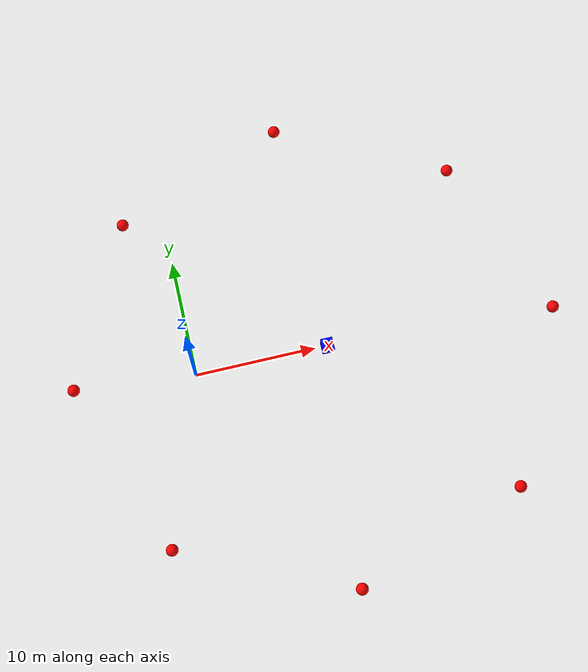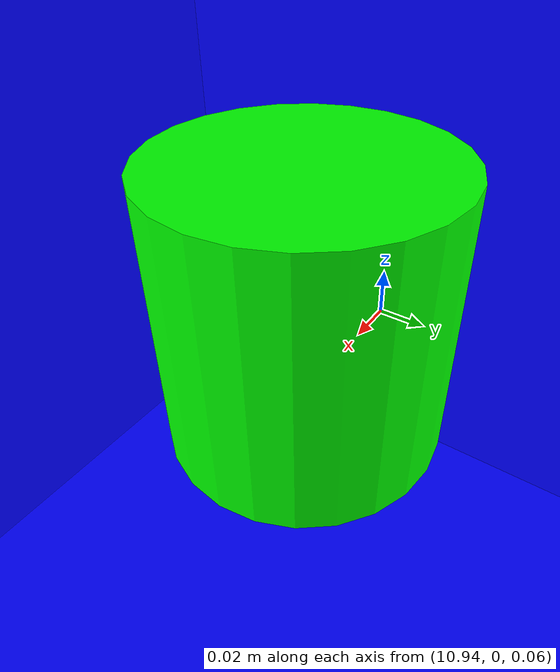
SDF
<sdf version="1.8">

    <world name="3d_world">

        <physics name="1ms" type="ode">
            <max_step_size>0.001</max_step_size>
            <real_time_factor>1.0</real_time_factor>
            <real_time_update_rate>1000.0</real_time_update_rate>
        </physics>
        <gravity>0 0 0</gravity>

        <plugin filename="gz-sim-physics-system" name="gz::sim::v8::systems::Physics">
        </plugin>
        <plugin filename="libignition-gazebo-user-commands-system.so" name="ignition::gazebo::systems::UserCommands">
        </plugin>
        <plugin filename="gz-sim-scene-broadcaster-system" name="gz::sim::systems::SceneBroadcaster">
        </plugin>
        <!-- Moved Sensors system plugin up with other plugins -->
        <plugin filename="gz-sim-sensors-system" name="gz::sim::systems::Sensors">
            <render_engine>ogre2</render_engine>
        </plugin>

        <light type="directional" name="sun">
            <cast_shadows>true</cast_shadows>
            <pose>0 0 10 0 0 0</pose>
            <diffuse>0.8 0.8 0.8 1</diffuse>
            <specular>0.2 0.2 0.2 1</specular>
            <attenuation>
                <range>1000</range>
                <constant>0.9</constant>
                <linear>0.01</linear>
                <quadratic>0.001</quadratic>
            </attenuation>
            <direction>-0.5 0.1 -0.9</direction>
        </light>

        <model name="agente" canonical_link="chassis">
            <pose relative_to="world">11.0 0 0.0 0 0 0</pose> <!-- Changed z-position to 0.0 -->
            <link name="chassis">
                <pose relative_to="__model__">0.0 0 0.0 0 0 0</pose>
                <inertial>
                    <mass>1.14395</mass>
                    <inertia>
                        <ixx>0.095329</ixx>
                        <ixy>0</ixy>
                        <ixz>0</ixz>
                        <iyy>0.381317</iyy>
                        <iyz>0</iyz>
                        <izz>0.476646</izz>
                    </inertia>
                </inertial>
                <visual name="visual">
                    <geometry>
                        <box>
                            <size>1.0 1.0 1.0</size> <!-- Changed height to 1.0 for cube chassis -->
                        </box>
                    </geometry>
                    <material>
                        <ambient>0.0 0.0 1.0 1</ambient>
                        <diffuse>0.0 0.0 1.0 1</diffuse>
                        <specular>0.0 0.0 1.0 1</specular>
                    </material>
                </visual>
                <collision name="collision">
                    <geometry>
                        <box>
                            <size>1.0 1.0 1.0</size>
                        </box>
                    </geometry>
                </collision>
                <enable_gravity>false</enable_gravity>
            </link>

            <!-- Added LiDAR link -->
            <link name='lidar_link'>
                <pose relative_to='chassis'>0.0 0 0.1 0 0 0</pose>
                <inertial>
                    <mass>0.1</mass>
                    <inertia>
                        <ixx>0.000166667</ixx>
                        <iyy>0.000166667</iyy>
                        <izz>0.000166667</izz>
                    </inertia>
                </inertial>
                <collision name='collision'>
                    <geometry>
                        <cylinder>
                            <radius>0.05</radius>
                            <length>0.1</length>
                        </cylinder>
                    </geometry>
                </collision>
                <visual name='visual'>
                    <geometry>
                        <cylinder>
                            <radius>0.05</radius>
                            <length>0.1</length>
                        </cylinder>
                    </geometry>
                    <material>
                        <ambient>0.0 1.0 0.0 1</ambient>
                        <diffuse>0.0 1.0 0.0 1</diffuse>
                        <specular>0.0 1.0 0.0 1</specular>
                    </material>
                </visual>
                <sensor name="lidar" type="gpu_lidar">
                    <topic>scan</topic>
                    <update_rate>10</update_rate>
                    <lidar>
                        <scan>
                            <horizontal>
                                <samples>5000</samples>
                                <resolution>1</resolution>
                                <min_angle>-3.14159</min_angle>
                                <max_angle>3.14159</max_angle>
                            </horizontal>
                        </scan>
                        <range>
                            <min>0.1</min>
                            <max>50.0</max>
                            <resolution>0.01</resolution>
                        </range>
                    </lidar>
                    <visualize>true</visualize>
                    <always_on>true</always_on>
                    <update_rate>10</update_rate>
                    <pose_frame>lidar</pose_frame>
                </sensor>
                <enable_gravity>false</enable_gravity>
            </link>

            <!-- Added joint to connect LiDAR to chassis -->
            <joint name="lidar_joint" type="fixed">
                <parent>chassis</parent>
                <child>lidar_link</child>
            </joint>

            <plugin filename="ignition-gazebo-joint-state-publisher-system" name="ignition::gazebo::systems::JointStatePublisher">
            </plugin>

            <plugin filename="ignition-gazebo-odometry-publisher-system" name="ignition::gazebo::systems::OdometryPublisher">
                <dimensions>3</dimensions>
            </plugin>

            <plugin filename="ignition-gazebo-velocity-control-system" name="ignition::gazebo::systems::VelocityControl">
                <initial_linear>0.0 0 0</initial_linear>
                <initial_angular>0 0 0.0</initial_angular>
            </plugin>

            <plugin filename="libignition-gazebo-pose-publisher-system.so" name="ignition::gazebo::systems::PosePublisher">
                <topic>/agente/pose</topic>
                <frame_id>agente</frame_id>
                <update_rate>30</update_rate>
            </plugin>
        </model>

        <model name="obstacle_1" canonical_link="obstacle">
            <static>false</static>
            <pose relative_to="world">11.0 20.0 0.0 0 0 0</pose>
            <link name="obstacle">
                <pose relative_to="__model__">0.0 0 0.0 0 0 0</pose>
                <inertial>
                    <mass>1.0</mass>
                    <inertia>
                        <ixx>0.1</ixx>
                        <ixy>0</ixy>
                        <ixz>0</ixz>
                        <iyy>0.1</iyy>
                        <iyz>0</iyz>
                        <izz>0.1</izz>
                    </inertia>
                </inertial>
                <visual name="visual">
                    <geometry>
                        <sphere>
                            <radius>0.5</radius>
                        </sphere>
                    </geometry>
                    <material>
                        <ambient>1.0 0.0 0.0 1</ambient>
                        <diffuse>1.0 0.0 0.0 1</diffuse>
                        <specular>1.0 0.0 0.0 1</specular>
                    </material>
                </visual>
                <collision name="collision">
                    <geometry>
                        <sphere>
                            <radius>0.5</radius>
                        </sphere>
                    </geometry>
                </collision>
                <enable_gravity>false</enable_gravity>
            </link>

            <plugin filename="ignition-gazebo-velocity-control-system" name="ignition::gazebo::systems::VelocityControl">
                <initial_linear>0.0 -4.0 0</initial_linear>
                <initial_angular>0 0 0.0</initial_angular>
            </plugin>

            <plugin filename="ignition-gazebo-odometry-publisher-system" name="ignition::gazebo::systems::OdometryPublisher">
                <dimensions>3</dimensions>
            </plugin>
        </model>

        <model name="obstacle_2" canonical_link="obstacle">
            <static>false</static>
            <pose relative_to="world">9.0 -20.0 -0.0 0 0 0</pose>
            <link name="obstacle">
                <pose relative_to="__model__">0.0 0 0.0 0 0 0</pose>
                <inertial>
                    <mass>1.0</mass>
                    <inertia>
                        <ixx>0.1</ixx>
                        <ixy>0</ixy>
                        <ixz>0</ixz>
                        <iyy>0.1</iyy>
                        <iyz>0</iyz>
                        <izz>0.1</izz>
                    </inertia>
                </inertial>
                <visual name="visual">
                    <geometry>
                        <sphere>
                            <radius>0.5</radius>
                        </sphere>
                    </geometry>
                    <material>
                        <ambient>1.0 0.0 0.0 1</ambient>
                        <diffuse>1.0 0.0 0.0 1</diffuse>
                        <specular>1.0 0.0 0.0 1</specular>
                    </material>
                </visual>
                <collision name="collision">
                    <geometry>
                        <sphere>
                            <radius>0.5</radius>
                        </sphere>
                    </geometry>
                </collision>
                <enable_gravity>false</enable_gravity>
            </link>

            <plugin filename="ignition-gazebo-velocity-control-system" name="ignition::gazebo::systems::VelocityControl">
                <initial_linear>0.0 4.0 0</initial_linear>
                <initial_angular>0 0 0.0</initial_angular>
            </plugin>

            <plugin filename="ignition-gazebo-odometry-publisher-system" name="ignition::gazebo::systems::OdometryPublisher">
                <dimensions>3</dimensions>
            </plugin>
        </model>

        <model name="obstacle_3" canonical_link="obstacle">
            <static>false</static>
            <pose relative_to="world">30.0 -1.0 0.0 0 0 0</pose>
            <link name="obstacle">
                <pose relative_to="__model__">0.0 0 0.0 0 0 0</pose>
                <inertial>
                    <mass>1.0</mass>
                    <inertia>
                        <ixx>0.1</ixx>
                        <ixy>0</ixy>
                        <ixz>0</ixz>
                        <iyy>0.1</iyy>
                        <iyz>0</iyz>
                        <izz>0.1</izz>
                    </inertia>
                </inertial>
                <visual name="visual">
                    <geometry>
                        <sphere>
                            <radius>0.5</radius>
                        </sphere>
                    </geometry>
                    <material>
                        <ambient>1.0 0.0 0.0 1</ambient>
                        <diffuse>1.0 0.0 0.0 1</diffuse>
                        <specular>1.0 0.0 0.0 1</specular>
                    </material>
                </visual>
                <collision name="collision">
                    <geometry>
                        <sphere>
                            <radius>0.5</radius>
                        </sphere>
                    </geometry>
                </collision>
                <enable_gravity>false</enable_gravity>
            </link>

            <plugin filename="ignition-gazebo-velocity-control-system" name="ignition::gazebo::systems::VelocityControl">
                <initial_linear>-4.0 0.0 0</initial_linear>
                <initial_angular>0 0 0.0</initial_angular>
            </plugin>

            <plugin filename="ignition-gazebo-odometry-publisher-system" name="ignition::gazebo::systems::OdometryPublisher">
                <dimensions>3</dimensions>
            </plugin>
        </model>

        <model name="obstacle_4" canonical_link="obstacle">
            <static>false</static>
            <pose relative_to="world">-10.0 1.0 0.0 0 0 0</pose>
            <link name="obstacle">
                <pose relative_to="__model__">0.0 0 0.0 0 0 0</pose>
                <inertial>
                    <mass>1.0</mass>
                    <inertia>
                        <ixx>0.1</ixx>
                        <ixy>0</ixy>
                        <ixz>0</ixz>
                        <iyy>0.1</iyy>
                        <iyz>0</iyz>
                        <izz>0.1</izz>
                    </inertia>
                </inertial>
                <visual name="visual">
                    <geometry>
                        <sphere>
                            <radius>0.5</radius>
                        </sphere>
                    </geometry>
                    <material>
                        <ambient>1.0 0.0 0.0 1</ambient>
                        <diffuse>1.0 0.0 0.0 1</diffuse>
                        <specular>1.0 0.0 0.0 1</specular>
                    </material>
                </visual>
                <collision name="collision">
                    <geometry>
                        <sphere>
                            <radius>0.5</radius>
                        </sphere>
                    </geometry>
                </collision>
                <enable_gravity>false</enable_gravity>
            </link>

            <plugin filename="ignition-gazebo-velocity-control-system" name="ignition::gazebo::systems::VelocityControl">
                <initial_linear>4.0 0.0 0</initial_linear>
                <initial_angular>0 0 0.0</initial_angular>
            </plugin>

            <plugin filename="ignition-gazebo-odometry-publisher-system" name="ignition::gazebo::systems::OdometryPublisher">
                <dimensions>3</dimensions>
            </plugin>
        </model>

                <!-- Diagonal moving obstacles -->
                <!-- Diagonals = 45° rotation of existing offsets around (10,0); z lowered by 1 m -->
        <!-- From NE (rotation of East case): starts at (10,0) + R45*(20,-1) -->
        <model name="obstacle_5" canonical_link="obstacle">
            <static>false</static>
            <pose relative_to="world">24.849 13.435 -1.0 0 0 0</pose>
            <link name="obstacle">
                <pose>0 0 0 0 0 0</pose>
                <inertial><mass>1.0</mass>
                    <inertia><ixx>0.1</ixx><ixy>0</ixy><ixz>0</ixz><iyy>0.1</iyy><iyz>0</iyz><izz>0.1</izz></inertia>
                </inertial>
                <visual name="visual">
                    <geometry><sphere><radius>0.5</radius></sphere></geometry>
                    <material><ambient>1 0 0 1</ambient><diffuse>1 0 0 1</diffuse><specular>1 0 0 1</specular></material>
                </visual>
                <collision name="collision">
                    <geometry><sphere><radius>0.5</radius></sphere></geometry>
                </collision>
                <enable_gravity>false</enable_gravity>
            </link>
            <!-- velocity = R45*(-4,0) = (-2.828, -2.828) -->
            <plugin filename="ignition-gazebo-velocity-control-system" name="ignition::gazebo::systems::VelocityControl">
                <initial_linear>-2.828 -2.828 0</initial_linear>
                <initial_angular>0 0 0</initial_angular>
            </plugin>
        </model>

        <!-- From NW (rotation of North case, fixed to rotate about (10,0)) -->
        <model name="obstacle_6" canonical_link="obstacle">
            <static>false</static>
            <pose relative_to="world">-3.435 14.849 -1.0 0 0 0</pose> <!-- FIXED: correct rotation center -->
            <link name="obstacle">
                <pose>0 0 0 0 0 0</pose>
                <inertial>
                    <mass>1.0</mass>
                    <inertia>
                        <ixx>0.1</ixx><ixy>0</ixy><ixz>0</ixz>
                        <iyy>0.1</iyy><iyz>0</iyz><izz>0.1</izz>
                    </inertia>
                </inertial>
                <visual name="visual">
                    <geometry><sphere><radius>0.5</radius></sphere></geometry>
                    <material>
                        <ambient>1 0 0 1</ambient>
                        <diffuse>1 0 0 1</diffuse>
                        <specular>1 0 0 1</specular>
                    </material>
                </visual>
                <collision name="collision">
                    <geometry><sphere><radius>0.5</radius></sphere></geometry>
                </collision>
                <enable_gravity>false</enable_gravity>
            </link>

            <!-- velocity = R45*(0,-4) = (2.828, -2.828) -->
            <plugin filename="ignition-gazebo-velocity-control-system" name="ignition::gazebo::systems::VelocityControl">
                <initial_linear>2.828 -2.828 0</initial_linear>
                <initial_angular>0 0 0</initial_angular>
            </plugin>
        </model>

        <!-- From SE (rotation of South case): starts at (10,0) + R45*(-1,-20) -->
        <model name="obstacle_7" canonical_link="obstacle">
            <static>false</static>
            <pose relative_to="world">23.435 -14.849 -1.0 0 0 0</pose>
            <link name="obstacle">
                <pose>0 0 0 0 0 0</pose>
                <inertial><mass>1.0</mass>
                    <inertia><ixx>0.1</ixx><ixy>0</ixy><ixz>0</ixz><iyy>0.1</iyy><iyz>0</iyz><izz>0.1</izz></inertia>
                </inertial>
                <visual name="visual">
                    <geometry><sphere><radius>0.5</radius></sphere></geometry>
                    <material><ambient>1 0 0 1</ambient><diffuse>1 0 0 1</diffuse><specular>1 0 0 1</specular></material>
                </visual>
                <collision name="collision">
                    <geometry><sphere><radius>0.5</radius></sphere></geometry>
                </collision>
                <enable_gravity>false</enable_gravity>
            </link>
            <!-- velocity = R45*(0,4) = (-2.828, 2.828) -->
            <plugin filename="ignition-gazebo-velocity-control-system" name="ignition::gazebo::systems::VelocityControl">
                <initial_linear>-2.828 2.828 0</initial_linear>
                <initial_angular>0 0 0</initial_angular>
            </plugin>
        </model>

        <!-- From SW (rotation of West case): starts at (10,0) + R45*(-20,1) -->
        <model name="obstacle_8" canonical_link="obstacle">
            <static>false</static>
            <pose relative_to="world">-4.849 -13.435 -1.0 0 0 0</pose>
            <link name="obstacle">
                <pose>0 0 0 0 0 0</pose>
                <inertial><mass>1.0</mass>
                    <inertia><ixx>0.1</ixx><ixy>0</ixy><ixz>0</ixz><iyy>0.1</iyy><iyz>0</iyz><izz>0.1</izz></inertia>
                </inertial>
                <visual name="visual">
                    <geometry><sphere><radius>0.5</radius></sphere></geometry>
                    <material><ambient>1 0 0 1</ambient><diffuse>1 0 0 1</diffuse><specular>1 0 0 1</specular></material>
                </visual>
                <collision name="collision">
                    <geometry><sphere><radius>0.5</radius></sphere></geometry>
                </collision>
                <enable_gravity>false</enable_gravity>
            </link>
            <!-- velocity = R45*(4,0) = (2.828, 2.828) -->
            <plugin filename="ignition-gazebo-velocity-control-system" name="ignition::gazebo::systems::VelocityControl">
                <initial_linear>2.828 2.828 0</initial_linear>
                <initial_angular>0 0 0</initial_angular>
            </plugin>
        </model>

</world>
</sdf>
